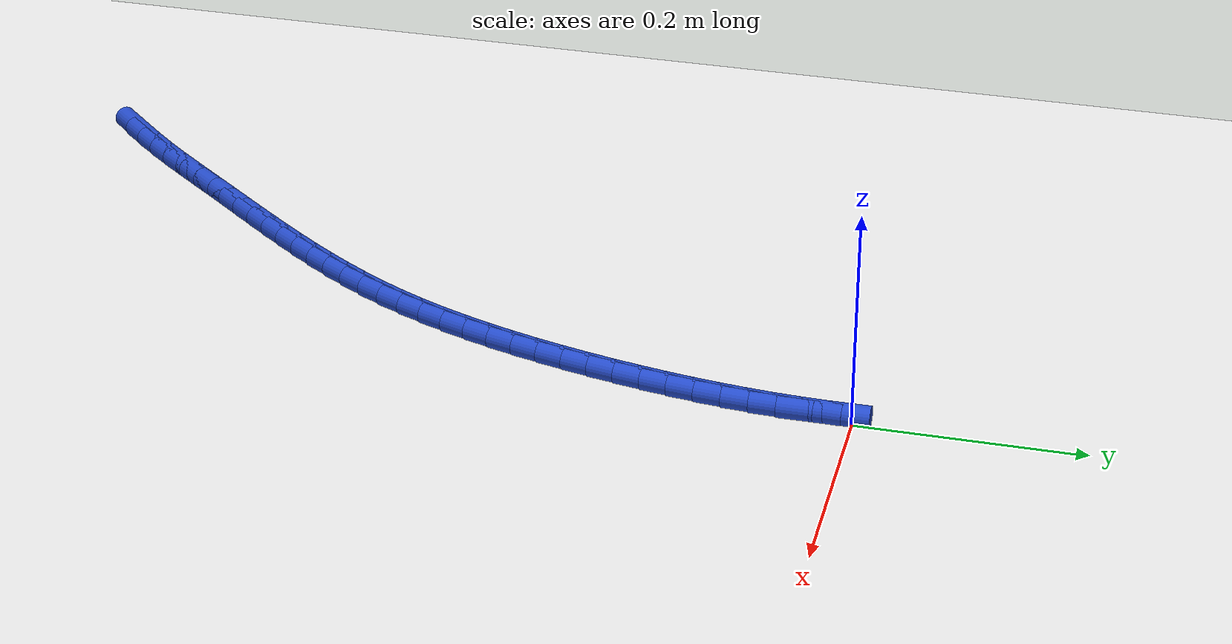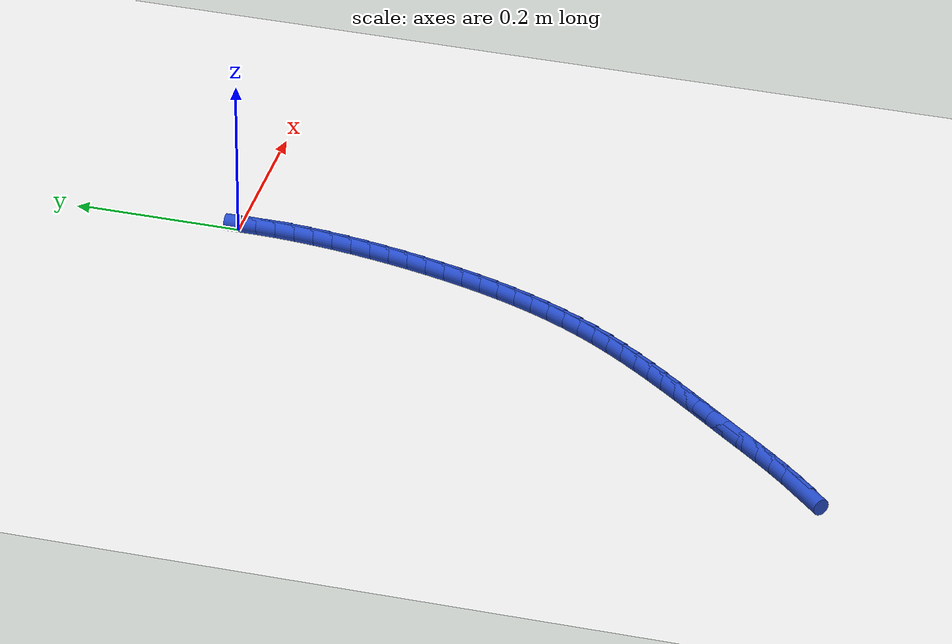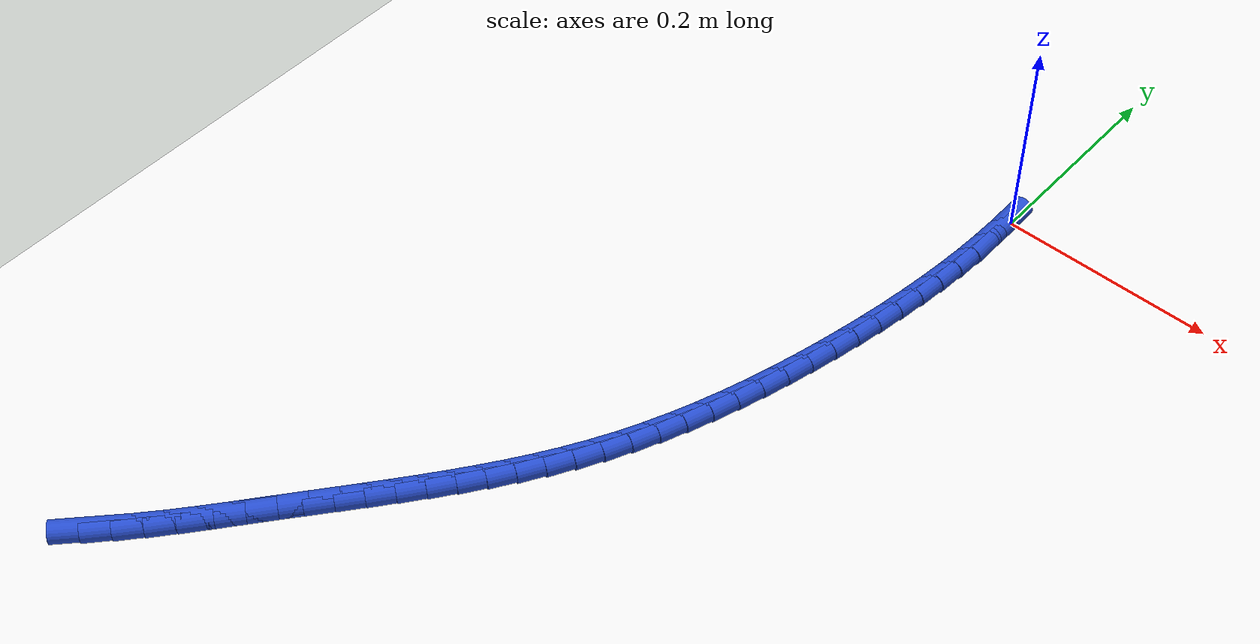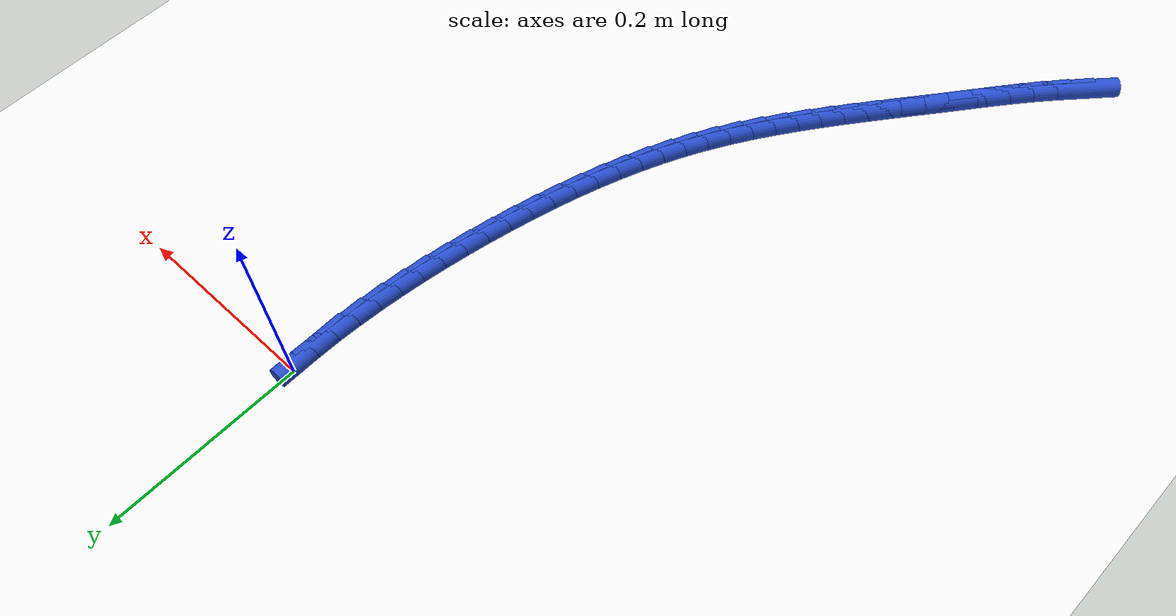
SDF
<sdf version="1.6">
 <world name="default">
  <model name="ground_plane">
   <static>1</static>
   <link name="link">
    <collision name="collision">
     <geometry><plane><normal>0 0 1</normal><size>100 100</size></plane></geometry>
     <surface><friction><ode><mu>100</mu><mu2>50</mu2></ode></friction></surface>
    </collision>
    <visual name="visual">
     <cast_shadows>0</cast_shadows>
     <geometry><plane><normal>0 0 1</normal><size>100 100</size></plane></geometry>
     <material>
      <script><uri>file://media/materials/scripts/gazebo.material</uri><name>Gazebo/WhiteGlow</name></script>
     </material>
    </visual>
   </link>
  </model>
  <model name="line">
   <link name="link_245">
    <pose>-0.34556334843027353 -0.7561363456818411 0.01 0 1.57 0.8113661505286179</pose>
    <collision name="collision">
     <geometry><cylinder><radius>0.01</radius><length>0.08</length></cylinder></geometry>
    </collision>
    <visual name="visual">
     <material>
      <script><name>Gazebo/Blue</name><uri>file://media/materials/scripts/gazebo.material</uri></script>
     </material>
     <geometry><cylinder><radius>0.01</radius><length>0.08</length></cylinder></geometry>
    </visual>
   </link>
   <link name="link_246">
    <pose>-0.3284968893029992 -0.7381596826043817 0.01 0 1.57 0.8434063124143646</pose>
    <collision name="collision">
     <geometry><cylinder><radius>0.01</radius><length>0.08</length></cylinder></geometry>
    </collision>
    <visual name="visual">
     <material>
      <script><name>Gazebo/Blue</name><uri>file://media/materials/scripts/gazebo.material</uri></script>
     </material>
     <geometry><cylinder><radius>0.01</radius><length>0.08</length></cylinder></geometry>
    </visual>
   </link>
   <link name="link_247">
    <pose>-0.3119163415043799 -0.7195346293209538 0.01 0 1.57 0.8675839877020863</pose>
    <collision name="collision">
     <geometry><cylinder><radius>0.01</radius><length>0.08</length></cylinder></geometry>
    </collision>
    <visual name="visual">
     <material>
      <script><name>Gazebo/Blue</name><uri>file://media/materials/scripts/gazebo.material</uri></script>
     </material>
     <geometry><cylinder><radius>0.01</radius><length>0.08</length></cylinder></geometry>
    </visual>
   </link>
   <link name="link_248">
    <pose>-0.29572119804020003 -0.700431956464783 0.01 0 1.57 0.8841500401599595</pose>
    <collision name="collision">
     <geometry><cylinder><radius>0.01</radius><length>0.08</length></cylinder></geometry>
    </collision>
    <visual name="visual">
     <material>
      <script><name>Gazebo/Blue</name><uri>file://media/materials/scripts/gazebo.material</uri></script>
     </material>
     <geometry><cylinder><radius>0.01</radius><length>0.08</length></cylinder></geometry>
    </visual>
   </link>
   <link name="link_249">
    <pose>-0.2798109519162444 -0.6810224346690952 0.01 0 1.57 0.8932733801611006</pose>
    <collision name="collision">
     <geometry><cylinder><radius>0.01</radius><length>0.08</length></cylinder></geometry>
    </collision>
    <visual name="visual">
     <material>
      <script><name>Gazebo/Blue</name><uri>file://media/materials/scripts/gazebo.material</uri></script>
     </material>
     <geometry><cylinder><radius>0.01</radius><length>0.08</length></cylinder></geometry>
    </visual>
   </link>
   <link name="link_250">
    <pose>-0.26408509613829745 -0.6614768345671163 0.01 0 1.57 0.8950219994331876</pose>
    <collision name="collision">
     <geometry><cylinder><radius>0.01</radius><length>0.08</length></cylinder></geometry>
    </collision>
    <visual name="visual">
     <material>
      <script><name>Gazebo/Blue</name><uri>file://media/materials/scripts/gazebo.material</uri></script>
     </material>
     <geometry><cylinder><radius>0.01</radius><length>0.08</length></cylinder></geometry>
    </visual>
   </link>
   <link name="link_251">
    <pose>-0.24844319785585295 -0.6419658288132241 0.01 0 1.57 0.8921293387688768</pose>
    <collision name="collision">
     <geometry><cylinder><radius>0.01</radius><length>0.08</length></cylinder></geometry>
    </collision>
    <visual name="visual">
     <material>
      <script><name>Gazebo/Blue</name><uri>file://media/materials/scripts/gazebo.material</uri></script>
     </material>
     <geometry><cylinder><radius>0.01</radius><length>0.08</length></cylinder></geometry>
    </visual>
   </link>
   <link name="link_252">
    <pose>-0.23282795033776074 -0.6226031000955589 0.01 0 1.57 0.8920248864094148</pose>
    <collision name="collision">
     <geometry><cylinder><radius>0.01</radius><length>0.08</length></cylinder></geometry>
    </collision>
    <visual name="visual">
     <material>
      <script><name>Gazebo/Blue</name><uri>file://media/materials/scripts/gazebo.material</uri></script>
     </material>
     <geometry><cylinder><radius>0.01</radius><length>0.08</length></cylinder></geometry>
    </visual>
   </link>
   <link name="link_253">
    <pose>-0.21729755004400925 -0.6033496968504104 0.01 0 1.57 0.8960054704420056</pose>
    <collision name="collision">
     <geometry><cylinder><radius>0.01</radius><length>0.08</length></cylinder></geometry>
    </collision>
    <visual name="visual">
     <material>
      <script><name>Gazebo/Blue</name><uri>file://media/materials/scripts/gazebo.material</uri></script>
     </material>
     <geometry><cylinder><radius>0.01</radius><length>0.08</length></cylinder></geometry>
    </visual>
   </link>
   <link name="link_254">
    <pose>-0.20192932678428605 -0.5841413833250486 0.01 0 1.57 0.9041384429079198</pose>
    <collision name="collision">
     <geometry><cylinder><radius>0.01</radius><length>0.08</length></cylinder></geometry>
    </collision>
    <visual name="visual">
     <material>
      <script><name>Gazebo/Blue</name><uri>file://media/materials/scripts/gazebo.material</uri></script>
     </material>
     <geometry><cylinder><radius>0.01</radius><length>0.08</length></cylinder></geometry>
    </visual>
   </link>
   <link name="link_255">
    <pose>-0.186800610368279 -0.5649139237667443 0.01 0 1.57 0.9164885563953609</pose>
    <collision name="collision">
     <geometry><cylinder><radius>0.01</radius><length>0.08</length></cylinder></geometry>
    </collision>
    <visual name="visual">
     <material>
      <script><name>Gazebo/Blue</name><uri>file://media/materials/scripts/gazebo.material</uri></script>
     </material>
     <geometry><cylinder><radius>0.01</radius><length>0.08</length></cylinder></geometry>
    </visual>
   </link>
   <link name="link_256">
    <pose>-0.17198873060567607 -0.5456030824227679 0.01 0 1.57 0.9331134779482685</pose>
    <collision name="collision">
     <geometry><cylinder><radius>0.01</radius><length>0.08</length></cylinder></geometry>
    </collision>
    <visual name="visual">
     <material>
      <script><name>Gazebo/Blue</name><uri>file://media/materials/scripts/gazebo.material</uri></script>
     </material>
     <geometry><cylinder><radius>0.01</radius><length>0.08</length></cylinder></geometry>
    </visual>
   </link>
   <link name="link_257">
    <pose>-0.15757101730616516 -0.5261446235403899 0.01 0 1.57 0.9540567589109183</pose>
    <collision name="collision">
     <geometry><cylinder><radius>0.01</radius><length>0.08</length></cylinder></geometry>
    </collision>
    <visual name="visual">
     <material>
      <script><name>Gazebo/Blue</name><uri>file://media/materials/scripts/gazebo.material</uri></script>
     </material>
     <geometry><cylinder><radius>0.01</radius><length>0.08</length></cylinder></geometry>
    </visual>
   </link>
   <link name="link_258">
    <pose>-0.14362480027943425 -0.506474311366881 0.01 0 1.57 0.9793381601147375</pose>
    <collision name="collision">
     <geometry><cylinder><radius>0.01</radius><length>0.08</length></cylinder></geometry>
    </collision>
    <visual name="visual">
     <material>
      <script><name>Gazebo/Blue</name><uri>file://media/materials/scripts/gazebo.material</uri></script>
     </material>
     <geometry><cylinder><radius>0.01</radius><length>0.08</length></cylinder></geometry>
    </visual>
   </link>
   <link name="link_259">
    <pose>-0.13022740933517118 -0.4865279101495116 0.01 0 1.57 1.0089414386010995</pose>
    <collision name="collision">
     <geometry><cylinder><radius>0.01</radius><length>0.08</length></cylinder></geometry>
    </collision>
    <visual name="visual">
     <material>
      <script><name>Gazebo/Blue</name><uri>file://media/materials/scripts/gazebo.material</uri></script>
     </material>
     <geometry><cylinder><radius>0.01</radius><length>0.08</length></cylinder></geometry>
    </visual>
   </link>
   <link name="link_260">
    <pose>-0.11745617428306394 -0.4662411841355523 0.01 0 1.57 1.0428000517748564</pose>
    <collision name="collision">
     <geometry><cylinder><radius>0.01</radius><length>0.08</length></cylinder></geometry>
    </collision>
    <visual name="visual">
     <material>
      <script><name>Gazebo/Blue</name><uri>file://media/materials/scripts/gazebo.material</uri></script>
     </material>
     <geometry><cylinder><radius>0.01</radius><length>0.08</length></cylinder></geometry>
    </visual>
   </link>
   <link name="link_261">
    <pose>-0.10538842493280003 -0.4455498975722731 0.01 0 1.57 1.0806871084915999</pose>
    <collision name="collision">
     <geometry><cylinder><radius>0.01</radius><length>0.08</length></cylinder></geometry>
    </collision>
    <visual name="visual">
     <material>
      <script><name>Gazebo/Blue</name><uri>file://media/materials/scripts/gazebo.material</uri></script>
     </material>
     <geometry><cylinder><radius>0.01</radius><length>0.08</length></cylinder></geometry>
    </visual>
   </link>
   <link name="link_262">
    <pose>-0.0940997543074954 -0.42439138070387894 0.01 0 1.57 1.119583186689339</pose>
    <collision name="collision">
     <geometry><cylinder><radius>0.01</radius><length>0.08</length></cylinder></geometry>
    </collision>
    <visual name="visual">
     <material>
      <script><name>Gazebo/Blue</name><uri>file://media/materials/scripts/gazebo.material</uri></script>
     </material>
     <geometry><cylinder><radius>0.01</radius><length>0.08</length></cylinder></geometry>
    </visual>
   </link>
   <link name="link_263">
    <pose>-0.0836134412470491 -0.4027501335602928 0.01 0 1.57 1.1561568363048058</pose>
    <collision name="collision">
     <geometry><cylinder><radius>0.01</radius><length>0.08</length></cylinder></geometry>
    </collision>
    <visual name="visual">
     <material>
      <script><name>Gazebo/Blue</name><uri>file://media/materials/scripts/gazebo.material</uri></script>
     </material>
     <geometry><cylinder><radius>0.01</radius><length>0.08</length></cylinder></geometry>
    </visual>
   </link>
   <link name="link_264">
    <pose>-0.07389248855586507 -0.3806650048681702 0.01 0 1.57 1.1902489912871899</pose>
    <collision name="collision">
     <geometry><cylinder><radius>0.01</radius><length>0.08</length></cylinder></geometry>
    </collision>
    <visual name="visual">
     <material>
      <script><name>Gazebo/Blue</name><uri>file://media/materials/scripts/gazebo.material</uri></script>
     </material>
     <geometry><cylinder><radius>0.01</radius><length>0.08</length></cylinder></geometry>
    </visual>
   </link>
   <link name="link_265">
    <pose>-0.06489655985642077 -0.35817785417238585 0.01 0 1.57 1.2219044395127145</pose>
    <collision name="collision">
     <geometry><cylinder><radius>0.01</radius><length>0.08</length></cylinder></geometry>
    </collision>
    <visual name="visual">
     <material>
      <script><name>Gazebo/Blue</name><uri>file://media/materials/scripts/gazebo.material</uri></script>
     </material>
     <geometry><cylinder><radius>0.01</radius><length>0.08</length></cylinder></geometry>
    </visual>
   </link>
   <link name="link_266">
    <pose>-0.0565853187711936 -0.3353305410178145 0.01 0 1.57 1.251183386202486</pose>
    <collision name="collision">
     <geometry><cylinder><radius>0.01</radius><length>0.08</length></cylinder></geometry>
    </collision>
    <visual name="visual">
     <material>
      <script><name>Gazebo/Blue</name><uri>file://media/materials/scripts/gazebo.material</uri></script>
     </material>
     <geometry><cylinder><radius>0.01</radius><length>0.08</length></cylinder></geometry>
    </visual>
   </link>
   <link name="link_267">
    <pose>-0.04891842892266096 -0.31216492494933107 0.01 0 1.57 1.2781558056873759</pose>
    <collision name="collision">
     <geometry><cylinder><radius>0.01</radius><length>0.08</length></cylinder></geometry>
    </collision>
    <visual name="visual">
     <material>
      <script><name>Gazebo/Blue</name><uri>file://media/materials/scripts/gazebo.material</uri></script>
     </material>
     <geometry><cylinder><radius>0.01</radius><length>0.08</length></cylinder></geometry>
    </visual>
   </link>
   <link name="link_268">
    <pose>-0.04185555393330025 -0.2887228655118099 0.01 0 1.57 1.3028966735641616</pose>
    <collision name="collision">
     <geometry><cylinder><radius>0.01</radius><length>0.08</length></cylinder></geometry>
    </collision>
    <visual name="visual">
     <material>
      <script><name>Gazebo/Blue</name><uri>file://media/materials/scripts/gazebo.material</uri></script>
     </material>
     <geometry><cylinder><radius>0.01</radius><length>0.08</length></cylinder></geometry>
    </visual>
   </link>
   <link name="link_269">
    <pose>-0.03535635742558894 -0.2650462222501263 0.01 0 1.57 1.3254820406390864</pose>
    <collision name="collision">
     <geometry><cylinder><radius>0.01</radius><length>0.08</length></cylinder></geometry>
    </collision>
    <visual name="visual">
     <material>
      <script><name>Gazebo/Blue</name><uri>file://media/materials/scripts/gazebo.material</uri></script>
     </material>
     <geometry><cylinder><radius>0.01</radius><length>0.08</length></cylinder></geometry>
    </visual>
   </link>
   <link name="link_270">
    <pose>-0.029380503022004227 -0.24117685470915395 0.01 0 1.57 1.3459918423332546</pose>
    <collision name="collision">
     <geometry><cylinder><radius>0.01</radius><length>0.08</length></cylinder></geometry>
    </collision>
    <visual name="visual">
     <material>
      <script><name>Gazebo/Blue</name><uri>file://media/materials/scripts/gazebo.material</uri></script>
     </material>
     <geometry><cylinder><radius>0.01</radius><length>0.08</length></cylinder></geometry>
    </visual>
   </link>
   <link name="link_271">
    <pose>-0.02388780206217809 -0.2171566070182962 0.01 0 1.57 1.3654615521525388</pose>
    <collision name="collision">
     <geometry><cylinder><radius>0.01</radius><length>0.08</length></cylinder></geometry>
    </collision>
    <visual name="visual">
     <material>
      <script><name>Gazebo/Blue</name><uri>file://media/materials/scripts/gazebo.material</uri></script>
     </material>
     <geometry><cylinder><radius>0.01</radius><length>0.08</length></cylinder></geometry>
    </visual>
   </link>
   <link name="link_272">
    <pose>-0.01886187648697947 -0.1930248384792345 0.01 0 1.57 1.3859881271589065</pose>
    <collision name="collision">
     <geometry><cylinder><radius>0.01</radius><length>0.08</length></cylinder></geometry>
    </collision>
    <visual name="visual">
     <material>
      <script><name>Gazebo/Blue</name><uri>file://media/materials/scripts/gazebo.material</uri></script>
     </material>
     <geometry><cylinder><radius>0.01</radius><length>0.08</length></cylinder></geometry>
    </visual>
   </link>
   <link name="link_273">
    <pose>-0.014336189252848805 -0.16881570708286384 0.01 0 1.57 1.4079128065749127</pose>
    <collision name="collision">
     <geometry><cylinder><radius>0.01</radius><length>0.08</length></cylinder></geometry>
    </collision>
    <visual name="visual">
     <material>
      <script><name>Gazebo/Blue</name><uri>file://media/materials/scripts/gazebo.material</uri></script>
     </material>
     <geometry><cylinder><radius>0.01</radius><length>0.08</length></cylinder></geometry>
    </visual>
   </link>
   <link name="link_274">
    <pose>-0.010350465929264233 -0.14456271726604586 0.01 0 1.57 1.4313299066857021</pose>
    <collision name="collision">
     <geometry><cylinder><radius>0.01</radius><length>0.08</length></cylinder></geometry>
    </collision>
    <visual name="visual">
     <material>
      <script><name>Gazebo/Blue</name><uri>file://media/materials/scripts/gazebo.material</uri></script>
     </material>
     <geometry><cylinder><radius>0.01</radius><length>0.08</length></cylinder></geometry>
    </visual>
   </link>
   <link name="link_275">
    <pose>-0.006944432085703882 -0.12029937346564232 0.01 0 1.57 1.456340155651255</pose>
    <collision name="collision">
     <geometry><cylinder><radius>0.01</radius><length>0.08</length></cylinder></geometry>
    </collision>
    <visual name="visual">
     <material>
      <script><name>Gazebo/Blue</name><uri>file://media/materials/scripts/gazebo.material</uri></script>
     </material>
     <geometry><cylinder><radius>0.01</radius><length>0.08</length></cylinder></geometry>
    </visual>
   </link>
   <link name="link_276">
    <pose>-0.004157813291645879 -0.09605918011851494 0.01 0 1.57 1.483050058113105</pose>
    <collision name="collision">
     <geometry><cylinder><radius>0.01</radius><length>0.08</length></cylinder></geometry>
    </collision>
    <visual name="visual">
     <material>
      <script><name>Gazebo/Blue</name><uri>file://media/materials/scripts/gazebo.material</uri></script>
     </material>
     <geometry><cylinder><radius>0.01</radius><length>0.08</length></cylinder></geometry>
    </visual>
   </link>
   <link name="link_277">
    <pose>-0.002030335116568361 -0.07187564166152538 0.01 0 1.57 1.5115708761292161</pose>
    <collision name="collision">
     <geometry><cylinder><radius>0.01</radius><length>0.08</length></cylinder></geometry>
    </collision>
    <visual name="visual">
     <material>
      <script><name>Gazebo/Blue</name><uri>file://media/materials/scripts/gazebo.material</uri></script>
     </material>
     <geometry><cylinder><radius>0.01</radius><length>0.08</length></cylinder></geometry>
    </visual>
   </link>
   <link name="link_278">
    <pose>-0.000601723129949455 -0.047782262531535405 0.01 0 1.57 1.5420171065983943</pose>
    <collision name="collision">
     <geometry><cylinder><radius>0.01</radius><length>0.08</length></cylinder></geometry>
    </collision>
    <visual name="visual">
     <material>
      <script><name>Gazebo/Blue</name><uri>file://media/materials/scripts/gazebo.material</uri></script>
     </material>
     <geometry><cylinder><radius>0.01</radius><length>0.08</length></cylinder></geometry>
    </visual>
   </link>
   <link name="link_279">
    <pose>8.829709873271882e-05 -0.023812547165405897 0.01 0 1.57 -1.5670883364884507</pose>
    <collision name="collision">
     <geometry><cylinder><radius>0.01</radius><length>0.08</length></cylinder></geometry>
    </collision>
    <visual name="visual">
     <material>
      <script><name>Gazebo/Blue</name><uri>file://media/materials/scripts/gazebo.material</uri></script>
     </material>
     <geometry><cylinder><radius>0.01</radius><length>0.08</length></cylinder></geometry>
    </visual>
   </link>
  </model>
 </world>
</sdf>
